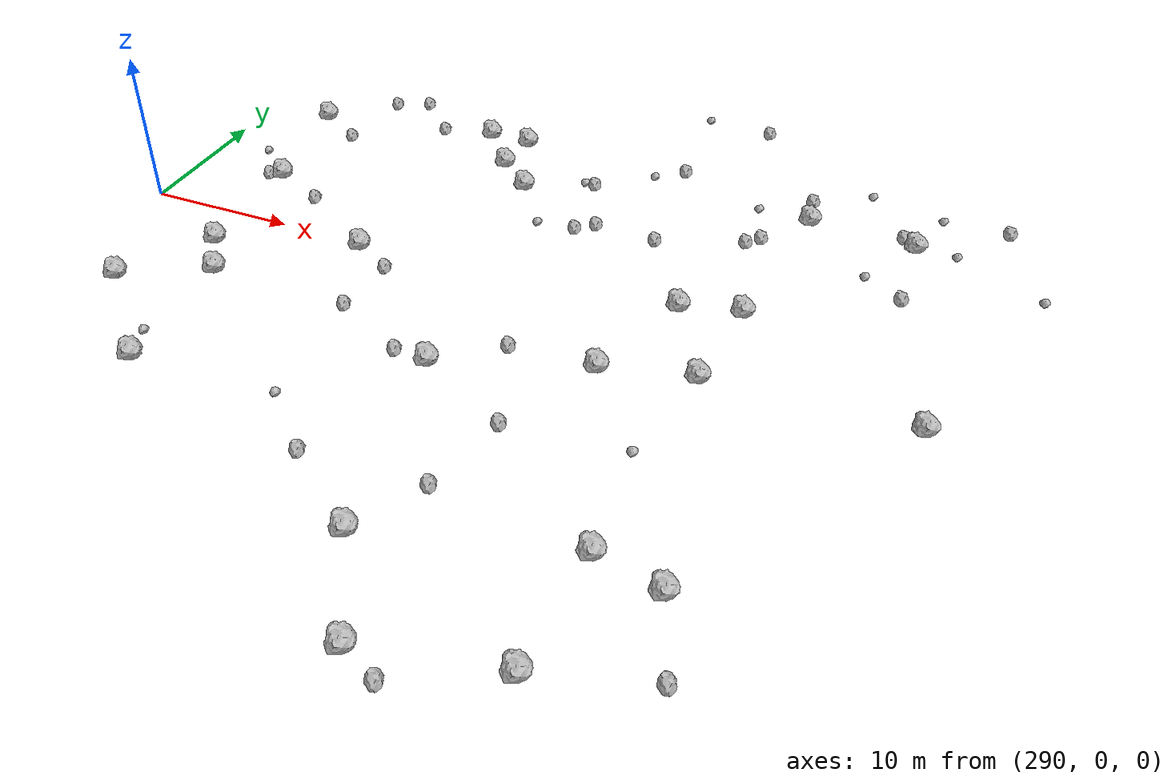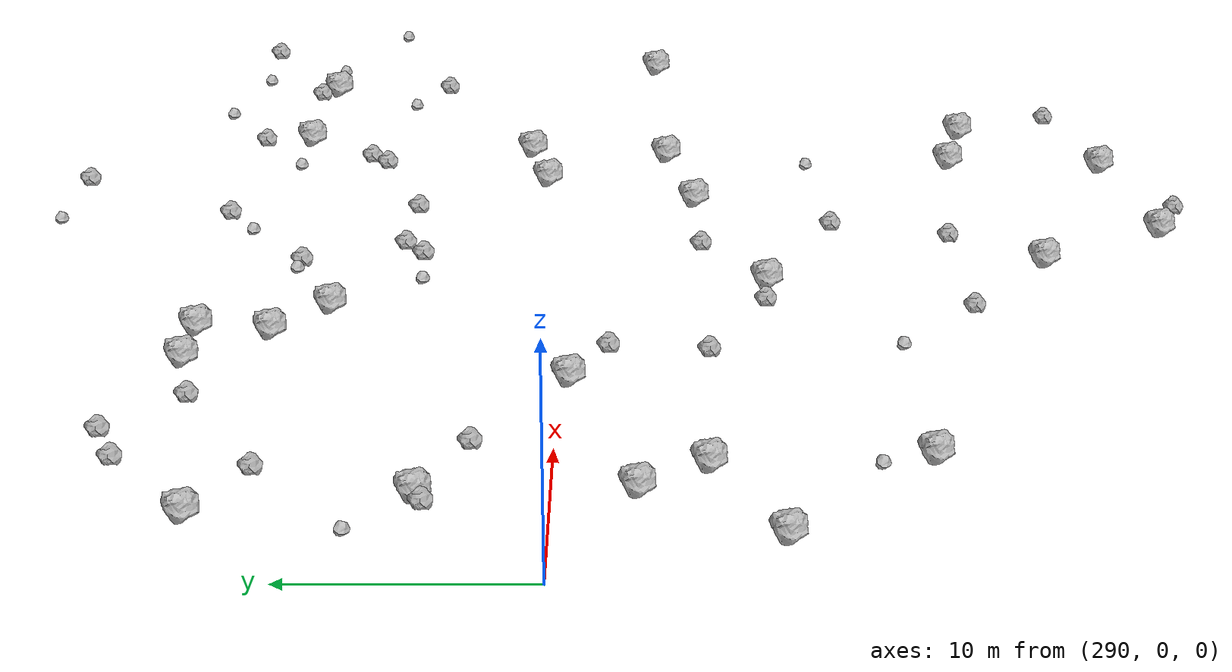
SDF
<sdf version="1.6">
 <world name="default">
  <include><uri>model://sun</uri></include>
  <model name="rock1_8_3">
   <include><uri>model://rock1</uri><pose>294.8112622025756 13.98831016757105 0.5 0 0 0</pose></include>
  </model>
  <model name="rock1_8_4">
   <include><uri>model://rock1</uri><pose>327.00344410298237 1.2166164614906592 0.5 0 0 0</pose></include>
  </model>
  <model name="rock1_8_5">
   <include><uri>model://rock1</uri><pose>310.4889668411393 16.009627353829444 0.5 0 0 0</pose></include>
  </model>
  <model name="rock1_8_6">
   <include><uri>model://rock1</uri><pose>312.7028428236908 10.397769222013856 0.5 0 0 0</pose></include>
  </model>
  <model name="rock1_8_7">
   <include><uri>model://rock1</uri><pose>342.58792118191946 -4.198814769891438 0.5 0 0 0</pose></include>
  </model>
  <model name="rock1_8_8">
   <include><uri>model://rock1</uri><pose>305.92323342324755 -0.3958701367920554 0.5 0 0 0</pose></include>
  </model>
  <model name="rock1_8_9">
   <include><uri>model://rock1</uri><pose>310.1651629138944 12.728657465517628 0.5 0 0 0</pose></include>
  </model>
  <model name="rock1_8_10">
   <include><uri>model://rock1</uri><pose>296.38334657509085 5.322356248813605 0.5 0 0 0</pose></include>
  </model>
  <model name="rock1_8_11">
   <include><uri>model://rock1</uri><pose>321.2444644111524 -28.01043543637461 0.5 0 0 0</pose></include>
  </model>
  <model name="rock1_8_12">
   <include><uri>model://rock1</uri><pose>296.8718313733551 -3.326321735117766 0.5 0 0 0</pose></include>
  </model>
  <model name="rock1_8_13">
   <include><uri>model://rock1</uri><pose>330.1258065333575 -4.661643904644265 0.5 0 0 0</pose></include>
  </model>
  <model name="rock1_8_14">
   <include><uri>model://rock1</uri><pose>332.0754426569081 13.544145076694754 0.5 0 0 0</pose></include>
  </model>
  <model name="rock1_8_15">
   <include><uri>model://rock1</uri><pose>339.10206840949746 12.953084460214278 0.5 0 0 0</pose></include>
  </model>
  <model name="rock1_8_16">
   <include><uri>model://rock1</uri><pose>315.4288197341581 -9.12860950431456 0.5 0 0 0</pose></include>
  </model>
  <model name="rock1_8_17">
   <include><uri>model://rock1</uri><pose>307.5150744581503 16.132668968250123 0.5 0 0 0</pose></include>
  </model>
  <model name="rock1_8_18">
   <include><uri>model://rock1</uri><pose>328.97304269905544 -26.40678324862983 0.5 0 0 0</pose></include>
  </model>
  <model name="rock1_8_19">
   <include><uri>model://rock1</uri><pose>317.79916463861804 -22.054324813089995 0.5 0 0 0</pose></include>
  </model>
  <model name="rock1_8_20">
   <include><uri>model://rock1</uri><pose>329.4212579736861 -18.863441010885623 0.5 0 0 0</pose></include>
  </model>
  <model name="rock1_8_21">
   <include><uri>model://rock1</uri><pose>330.7657560051457 2.1204057253755195 0.5 0 0 0</pose></include>
  </model>
  <model name="rock1_8_22">
   <include><uri>model://rock1</uri><pose>298.8216427630542 -6.142298898520643 0.5 0 0 0</pose></include>
  </model>
  <model name="rock1_8_23">
   <include><uri>model://rock1</uri><pose>293.50258425753134 -8.993991496421042 0.5 0 0 0</pose></include>
  </model>
  <model name="rock1_8_24">
   <include><uri>model://rock1</uri><pose>333.37952576076793 -19.793788452172024 0.5 0 0 0</pose></include>
  </model>
  <model name="rock1_8_25">
   <include><uri>model://rock1</uri><pose>324.55552968298673 -5.969296921837319 0.5 0 0 0</pose></include>
  </model>
  <model name="rock1_8_26">
   <include><uri>model://rock1</uri><pose>299.5533504022674 -15.135689347498548 0.5 0 0 0</pose></include>
  </model>
  <model name="rock2_8_0">
   <include><uri>model://rock2</uri><pose>317.2602510544416 12.231175715369687 0.3 0 0 0</pose></include>
  </model>
  <model name="rock2_8_1">
   <include><uri>model://rock2</uri><pose>295.5810519659785 4.965547306179801 0.3 0 0 0</pose></include>
  </model>
  <model name="rock2_8_2">
   <include><uri>model://rock2</uri><pose>319.16400059179824 7.596497557461035 0.3 0 0 0</pose></include>
  </model>
  <model name="rock2_8_3">
   <include><uri>model://rock2</uri><pose>328.84701951353645 9.365253241292045 0.3 0 0 0</pose></include>
  </model>
  <model name="rock2_8_4">
   <include><uri>model://rock2</uri><pose>338.2146094929497 13.762176238728799 0.3 0 0 0</pose></include>
  </model>
  <model name="rock2_8_5">
   <include><uri>model://rock2</uri><pose>339.26170403491176 6.973592222302003 0.3 0 0 0</pose></include>
  </model>
  <model name="rock2_8_6">
   <include><uri>model://rock2</uri><pose>331.72344437392724 15.86282133405954 0.3 0 0 0</pose></include>
  </model>
  <model name="rock2_8_7">
   <include><uri>model://rock2</uri><pose>344.51598468570774 16.862293014268673 0.3 0 0 0</pose></include>
  </model>
  <model name="rock2_8_8">
   <include><uri>model://rock2</uri><pose>308.3705707142347 -6.366952062480703 0.3 0 0 0</pose></include>
  </model>
  <model name="rock2_8_9">
   <include><uri>model://rock2</uri><pose>319.2154673902602 -6.2144425975740205 0.3 0 0 0</pose></include>
  </model>
  <model name="rock2_8_10">
   <include><uri>model://rock2</uri><pose>318.011868724827 6.684556373061149 0.3 0 0 0</pose></include>
  </model>
  <model name="rock2_8_11">
   <include><uri>model://rock2</uri><pose>312.72799390947955 -18.253028774345847 0.3 0 0 0</pose></include>
  </model>
  <model name="rock2_8_12">
   <include><uri>model://rock2</uri><pose>323.55411039560965 -29.113935246910266 0.3 0 0 0</pose></include>
  </model>
  <model name="rock2_8_13">
   <include><uri>model://rock2</uri><pose>298.8717565852403 17.50942358846128 0.3 0 0 0</pose></include>
  </model>
  <model name="rock2_8_14">
   <include><uri>model://rock2</uri><pose>300.26224600683616 3.3771977617118765 0.3 0 0 0</pose></include>
  </model>
  <model name="rock2_8_15">
   <include><uri>model://rock2</uri><pose>301.1245627975111 18.45646919389874 0.3 0 0 0</pose></include>
  </model>
  <model name="rock2_8_16">
   <include><uri>model://rock2</uri><pose>313.2950988655135 -8.991577054260397 0.3 0 0 0</pose></include>
  </model>
  <model name="rock2_8_17">
   <include><uri>model://rock2</uri><pose>308.72016528628524 -2.036431070749863 0.3 0 0 0</pose></include>
  </model>
  <model name="rock2_8_18">
   <include><uri>model://rock2</uri><pose>323.35825105076606 7.331444325113658 0.3 0 0 0</pose></include>
  </model>
  <model name="rock2_8_19">
   <include><uri>model://rock2</uri><pose>329.64187670258576 10.220140944728598 0.3 0 0 0</pose></include>
  </model>
  <model name="rock2_8_20">
   <include><uri>model://rock2</uri><pose>326.5343655884203 23.90431814288077 0.3 0 0 0</pose></include>
  </model>
  <model name="rock2_8_21">
   <include><uri>model://rock2</uri><pose>322.52184015826464 16.325208428391008 0.3 0 0 0</pose></include>
  </model>
  <model name="rock2_8_22">
   <include><uri>model://rock2</uri><pose>298.14530724690115 11.846475833096534 0.3 0 0 0</pose></include>
  </model>
  <model name="rock2_8_23">
   <include><uri>model://rock2</uri><pose>320.22618796798895 -17.881703737990023 0.3 0 0 0</pose></include>
  </model>
  <model name="rock2_8_24">
   <include><uri>model://rock2</uri><pose>321.5231243307589 -12.401969578392293 0.3 0 0 0</pose></include>
  </model>
  <model name="rock2_8_25">
   <include><uri>model://rock2</uri><pose>335.14423306935925 -24.494793788254015 0.3 0 0 0</pose></include>
  </model>
  <model name="rock2_8_26">
   <include><uri>model://rock2</uri><pose>304.0679143261444 15.3573549320488 0.3 0 0 0</pose></include>
  </model>
  <model name="rock3_8_0">
   <include><uri>model://rock3</uri><pose>335.34704278778526 18.095464292753654 0.2 0 0 0</pose></include>
  </model>
  <model name="rock3_8_1">
   <include><uri>model://rock3</uri><pose>347.3234701867955 9.913321254231377 0.2 0 0 0</pose></include>
  </model>
  <model name="rock3_8_2">
   <include><uri>model://rock3</uri><pose>315.3826992491483 6.486508127197595 0.2 0 0 0</pose></include>
  </model>
  <model name="rock3_8_3">
   <include><uri>model://rock3</uri><pose>293.55373712954827 7.7331685205666005 0.2 0 0 0</pose></include>
  </model>
  <model name="rock3_8_4">
   <include><uri>model://rock3</uri><pose>320.6686379964011 14.951993133728266 0.2 0 0 0</pose></include>
  </model>
  <model name="rock3_8_5">
   <include><uri>model://rock3</uri><pose>321.85871078725444 24.321423159239536 0.2 0 0 0</pose></include>
  </model>
  <model name="rock3_8_6">
   <include><uri>model://rock3</uri><pose>298.7446979121432 -13.01327000717222 0.2 0 0 0</pose></include>
  </model>
  <model name="rock3_8_7">
   <include><uri>model://rock3</uri><pose>340.2702040296506 16.780964384700965 0.2 0 0 0</pose></include>
  </model>
  <model name="rock3_8_8">
   <include><uri>model://rock3</uri><pose>328.8042857702943 -11.68050177028832 0.2 0 0 0</pose></include>
  </model>
  <model name="rock3_8_9">
   <include><uri>model://rock3</uri><pose>341.7200362924095 12.868661161419176 0.2 0 0 0</pose></include>
  </model>
  <model name="rock3_8_10">
   <include><uri>model://rock3</uri><pose>328.54527749501875 13.65255872420795 0.2 0 0 0</pose></include>
  </model>
  <model name="rock3_8_11">
   <include><uri>model://rock3</uri><pose>336.7230677454334 8.533091652375731 0.2 0 0 0</pose></include>
  </model>
  <model name="rock3_8_12">
   <include><uri>model://rock3</uri><pose>316.4702826053472 12.323554212114693 0.2 0 0 0</pose></include>
  </model>
  <model name="rock3_8_13">
   <include><uri>model://rock3</uri><pose>309.01580042081696 -14.798512002866307 0.2 0 0 0</pose></include>
  </model>
 </world>
</sdf>
